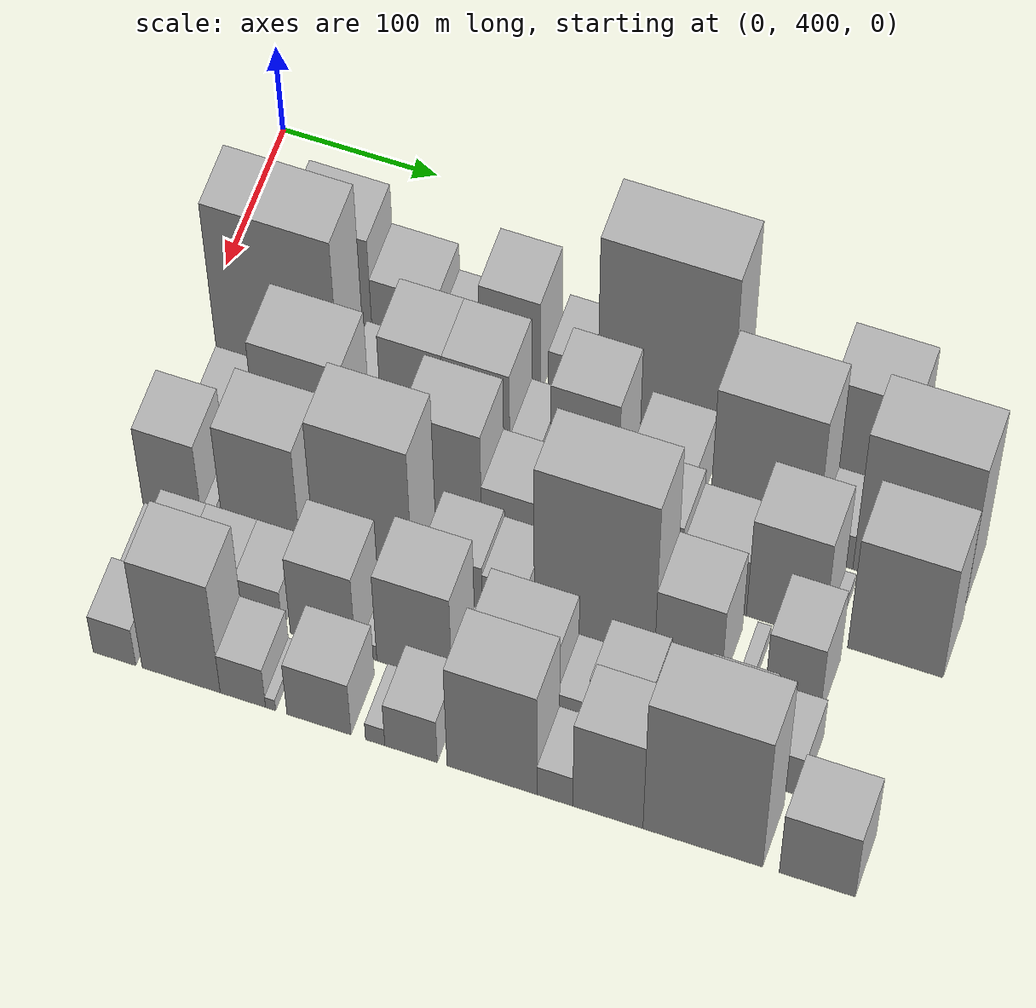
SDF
<sdf version="1.6">
 <world name="default">
  <model name="building_37">
   <static>1</static>
   <pose>100.0000 433.6537 0 0.000000 0.000000 0.000000</pose>
   <link name="link">
    <pose>0 0 36.00 0 0 0</pose>
    <collision name="collision"><geometry><box><size>40.0000 36.5249 72.0000</size></box></geometry></collision>
    <visual name="visual">
     <cast_shadows>0</cast_shadows>
     <geometry><box><size>40.0000 36.5249 72.0000</size></box></geometry>
     <material>
      <script>
       <uri>model://HANNAS_wall/materials/scripts</uri>
       <uri>model://HANNAS_wall/materials/textures</uri>
       <name>vrc/HANNAS_wall</name>
      </script>
     </material>
    </visual>
   </link>
  </model>
  <model name="building_38">
   <static>1</static>
   <pose>100.0000 476.8780 0 0.000000 0.000000 0.000000</pose>
   <link name="link">
    <pose>0 0 64.50 0 0 0</pose>
    <collision name="collision"><geometry><box><size>40.0000 49.9238 129.0000</size></box></geometry></collision>
    <visual name="visual">
     <cast_shadows>0</cast_shadows>
     <geometry><box><size>40.0000 49.9238 129.0000</size></box></geometry>
     <material>
      <script>
       <uri>model://HANNAS_wall/materials/scripts</uri>
       <uri>model://HANNAS_wall/materials/textures</uri>
       <name>vrc/HANNAS_wall</name>
      </script>
     </material>
    </visual>
   </link>
  </model>
  <model name="building_39">
   <static>1</static>
   <pose>100.0000 522.8641 0 0.000000 0.000000 0.000000</pose>
   <link name="link">
    <pose>0 0 40.50 0 0 0</pose>
    <collision name="collision"><geometry><box><size>40.0000 42.0485 81.0000</size></box></geometry></collision>
    <visual name="visual">
     <cast_shadows>0</cast_shadows>
     <geometry><box><size>40.0000 42.0485 81.0000</size></box></geometry>
     <material>
      <script>
       <uri>model://HANNAS_wall/materials/scripts</uri>
       <uri>model://HANNAS_wall/materials/textures</uri>
       <name>vrc/HANNAS_wall</name>
      </script>
     </material>
    </visual>
   </link>
  </model>
  <model name="building_40">
   <static>1</static>
   <pose>100.0000 557.1545 0 0.000000 0.000000 0.000000</pose>
   <link name="link">
    <pose>0 0 24.00 0 0 0</pose>
    <collision name="collision"><geometry><box><size>40.0000 26.5323 48.0000</size></box></geometry></collision>
    <visual name="visual">
     <cast_shadows>0</cast_shadows>
     <geometry><box><size>40.0000 26.5323 48.0000</size></box></geometry>
     <material>
      <script>
       <uri>model://HANNAS_wall/materials/scripts</uri>
       <uri>model://HANNAS_wall/materials/textures</uri>
       <name>vrc/HANNAS_wall</name>
      </script>
     </material>
    </visual>
   </link>
  </model>
  <model name="building_41">
   <static>1</static>
   <pose>100.0000 589.6250 0 0.000000 0.000000 0.000000</pose>
   <link name="link">
    <pose>0 0 58.50 0 0 0</pose>
    <collision name="collision"><geometry><box><size>40.0000 38.4087 117.0000</size></box></geometry></collision>
    <visual name="visual">
     <cast_shadows>0</cast_shadows>
     <geometry><box><size>40.0000 38.4087 117.0000</size></box></geometry>
     <material>
      <script>
       <uri>model://HANNAS_wall/materials/scripts</uri>
       <uri>model://HANNAS_wall/materials/textures</uri>
       <name>vrc/HANNAS_wall</name>
      </script>
     </material>
    </visual>
   </link>
  </model>
  <model name="building_42">
   <static>1</static>
   <pose>100.0000 629.2663 0 0.000000 0.000000 0.000000</pose>
   <link name="link">
    <pose>0 0 30.00 0 0 0</pose>
    <collision name="collision"><geometry><box><size>40.0000 30.8738 60.0000</size></box></geometry></collision>
    <visual name="visual">
     <cast_shadows>0</cast_shadows>
     <geometry><box><size>40.0000 30.8738 60.0000</size></box></geometry>
     <material>
      <script>
       <uri>model://HANNAS_wall/materials/scripts</uri>
       <uri>model://HANNAS_wall/materials/textures</uri>
       <name>vrc/HANNAS_wall</name>
      </script>
     </material>
    </visual>
   </link>
  </model>
  <model name="building_43">
   <static>1</static>
   <pose>100.0000 686.3726 0 0.000000 0.000000 0.000000</pose>
   <link name="link">
    <pose>0 0 111.00 0 0 0</pose>
    <collision name="collision"><geometry><box><size>40.0000 83.3390 222.0000</size></box></geometry></collision>
    <visual name="visual">
     <cast_shadows>0</cast_shadows>
     <geometry><box><size>40.0000 83.3390 222.0000</size></box></geometry>
     <material>
      <script>
       <uri>model://HANNAS_wall/materials/scripts</uri>
       <uri>model://HANNAS_wall/materials/textures</uri>
       <name>vrc/HANNAS_wall</name>
      </script>
     </material>
    </visual>
   </link>
  </model>
  <model name="building_44">
   <static>1</static>
   <pose>100.0000 750.5234 0 0.000000 0.000000 0.000000</pose>
   <link name="link">
    <pose>0 0 37.50 0 0 0</pose>
    <collision name="collision"><geometry><box><size>40.0000 44.9625 75.0000</size></box></geometry></collision>
    <visual name="visual">
     <cast_shadows>0</cast_shadows>
     <geometry><box><size>40.0000 44.9625 75.0000</size></box></geometry>
     <material>
      <script>
       <uri>model://HANNAS_wall/materials/scripts</uri>
       <uri>model://HANNAS_wall/materials/textures</uri>
       <name>vrc/HANNAS_wall</name>
      </script>
     </material>
    </visual>
   </link>
  </model>
  <model name="building_45">
   <static>1</static>
   <pose>100.0000 782.7815 0 0.000000 0.000000 0.000000</pose>
   <link name="link">
    <pose>0 0 10.50 0 0 0</pose>
    <collision name="collision"><geometry><box><size>40.0000 9.5538 21.0000</size></box></geometry></collision>
    <visual name="visual">
     <cast_shadows>0</cast_shadows>
     <geometry><box><size>40.0000 9.5538 21.0000</size></box></geometry>
     <material>
      <script>
       <uri>model://HANNAS_wall/materials/scripts</uri>
       <uri>model://HANNAS_wall/materials/textures</uri>
       <name>vrc/HANNAS_wall</name>
      </script>
     </material>
    </visual>
   </link>
  </model>
  <model name="building_46">
   <static>1</static>
   <pose>100.0000 812.7004 0 0.000000 0.000000 0.000000</pose>
   <link name="link">
    <pose>0 0 67.50 0 0 0</pose>
    <collision name="collision"><geometry><box><size>40.0000 50.2839 135.0000</size></box></geometry></collision>
    <visual name="visual">
     <cast_shadows>0</cast_shadows>
     <geometry><box><size>40.0000 50.2839 135.0000</size></box></geometry>
     <material>
      <script>
       <uri>model://HANNAS_wall/materials/scripts</uri>
       <uri>model://HANNAS_wall/materials/textures</uri>
       <name>vrc/HANNAS_wall</name>
      </script>
     </material>
    </visual>
   </link>
  </model>
  <model name="building_80">
   <static>1</static>
   <pose>149.0000 460.5223 0 0.000000 0.000000 0.000000</pose>
   <link name="link">
    <pose>0 0 106.50 0 0 0</pose>
    <collision name="collision"><geometry><box><size>40.0000 78.3085 213.0000</size></box></geometry></collision>
    <visual name="visual">
     <cast_shadows>0</cast_shadows>
     <geometry><box><size>40.0000 78.3085 213.0000</size></box></geometry>
     <material>
      <script>
       <uri>model://HANNAS_wall/materials/scripts</uri>
       <uri>model://HANNAS_wall/materials/textures</uri>
       <name>vrc/HANNAS_wall</name>
      </script>
     </material>
    </visual>
   </link>
  </model>
  <model name="building_81">
   <static>1</static>
   <pose>149.0000 513.9437 0 0.000000 0.000000 0.000000</pose>
   <link name="link">
    <pose>0 0 22.50 0 0 0</pose>
    <collision name="collision"><geometry><box><size>40.0000 22.5342 45.0000</size></box></geometry></collision>
    <visual name="visual">
     <cast_shadows>0</cast_shadows>
     <geometry><box><size>40.0000 22.5342 45.0000</size></box></geometry>
     <material>
      <script>
       <uri>model://HANNAS_wall/materials/scripts</uri>
       <uri>model://HANNAS_wall/materials/textures</uri>
       <name>vrc/HANNAS_wall</name>
      </script>
     </material>
    </visual>
   </link>
  </model>
  <model name="building_82">
   <static>1</static>
   <pose>149.0000 545.0869 0 0.000000 0.000000 0.000000</pose>
   <link name="link">
    <pose>0 0 57.00 0 0 0</pose>
    <collision name="collision"><geometry><box><size>40.0000 39.7520 114.0000</size></box></geometry></collision>
    <visual name="visual">
     <cast_shadows>0</cast_shadows>
     <geometry><box><size>40.0000 39.7520 114.0000</size></box></geometry>
     <material>
      <script>
       <uri>model://HANNAS_wall/materials/scripts</uri>
       <uri>model://HANNAS_wall/materials/textures</uri>
       <name>vrc/HANNAS_wall</name>
      </script>
     </material>
    </visual>
   </link>
  </model>
  <model name="building_83">
   <static>1</static>
   <pose>149.0000 585.7108 0 0.000000 0.000000 0.000000</pose>
   <link name="link">
    <pose>0 0 57.00 0 0 0</pose>
    <collision name="collision"><geometry><box><size>40.0000 41.4958 114.0000</size></box></geometry></collision>
    <visual name="visual">
     <cast_shadows>0</cast_shadows>
     <geometry><box><size>40.0000 41.4958 114.0000</size></box></geometry>
     <material>
      <script>
       <uri>model://HANNAS_wall/materials/scripts</uri>
       <uri>model://HANNAS_wall/materials/textures</uri>
       <name>vrc/HANNAS_wall</name>
      </script>
     </material>
    </visual>
   </link>
  </model>
  <model name="building_84">
   <static>1</static>
   <pose>149.0000 616.3062 0 0.000000 0.000000 0.000000</pose>
   <link name="link">
    <pose>0 0 18.00 0 0 0</pose>
    <collision name="collision"><geometry><box><size>40.0000 19.6950 36.0000</size></box></geometry></collision>
    <visual name="visual">
     <cast_shadows>0</cast_shadows>
     <geometry><box><size>40.0000 19.6950 36.0000</size></box></geometry>
     <material>
      <script>
       <uri>model://HANNAS_wall/materials/scripts</uri>
       <uri>model://HANNAS_wall/materials/textures</uri>
       <name>vrc/HANNAS_wall</name>
      </script>
     </material>
    </visual>
   </link>
  </model>
  <model name="building_85">
   <static>1</static>
   <pose>149.0000 653.4569 0 0.000000 0.000000 0.000000</pose>
   <link name="link">
    <pose>0 0 60.00 0 0 0</pose>
    <collision name="collision"><geometry><box><size>40.0000 42.6064 120.0000</size></box></geometry></collision>
    <visual name="visual">
     <cast_shadows>0</cast_shadows>
     <geometry><box><size>40.0000 42.6064 120.0000</size></box></geometry>
     <material>
      <script>
       <uri>model://HANNAS_wall/materials/scripts</uri>
       <uri>model://HANNAS_wall/materials/textures</uri>
       <name>vrc/HANNAS_wall</name>
      </script>
     </material>
    </visual>
   </link>
  </model>
  <model name="building_86">
   <static>1</static>
   <pose>149.0000 702.0932 0 0.000000 0.000000 0.000000</pose>
   <link name="link">
    <pose>0 0 34.50 0 0 0</pose>
    <collision name="collision"><geometry><box><size>40.0000 40.6661 69.0000</size></box></geometry></collision>
    <visual name="visual">
     <cast_shadows>0</cast_shadows>
     <geometry><box><size>40.0000 40.6661 69.0000</size></box></geometry>
     <material>
      <script>
       <uri>model://HANNAS_wall/materials/scripts</uri>
       <uri>model://HANNAS_wall/materials/textures</uri>
       <name>vrc/HANNAS_wall</name>
      </script>
     </material>
    </visual>
   </link>
  </model>
  <model name="building_87">
   <static>1</static>
   <pose>149.0000 764.3944 0 0.000000 0.000000 0.000000</pose>
   <link name="link">
    <pose>0 0 90.00 0 0 0</pose>
    <collision name="collision"><geometry><box><size>40.0000 65.9363 180.0000</size></box></geometry></collision>
    <visual name="visual">
     <cast_shadows>0</cast_shadows>
     <geometry><box><size>40.0000 65.9363 180.0000</size></box></geometry>
     <material>
      <script>
       <uri>model://HANNAS_wall/materials/scripts</uri>
       <uri>model://HANNAS_wall/materials/textures</uri>
       <name>vrc/HANNAS_wall</name>
      </script>
     </material>
    </visual>
   </link>
  </model>
  <model name="building_88">
   <static>1</static>
   <pose>149.0000 809.0454 0 0.000000 0.000000 0.000000</pose>
   <link name="link">
    <pose>0 0 22.50 0 0 0</pose>
    <collision name="collision"><geometry><box><size>40.0000 23.3656 45.0000</size></box></geometry></collision>
    <visual name="visual">
     <cast_shadows>0</cast_shadows>
     <geometry><box><size>40.0000 23.3656 45.0000</size></box></geometry>
     <material>
      <script>
       <uri>model://HANNAS_wall/materials/scripts</uri>
       <uri>model://HANNAS_wall/materials/textures</uri>
       <name>vrc/HANNAS_wall</name>
      </script>
     </material>
    </visual>
   </link>
  </model>
  <model name="building_89">
   <static>1</static>
   <pose>149.0000 855.6148 0 0.000000 0.000000 0.000000</pose>
   <link name="link">
    <pose>0 0 91.50 0 0 0</pose>
    <collision name="collision"><geometry><box><size>40.0000 69.7732 183.0000</size></box></geometry></collision>
    <visual name="visual">
     <cast_shadows>0</cast_shadows>
     <geometry><box><size>40.0000 69.7732 183.0000</size></box></geometry>
     <material>
      <script>
       <uri>model://HANNAS_wall/materials/scripts</uri>
       <uri>model://HANNAS_wall/materials/textures</uri>
       <name>vrc/HANNAS_wall</name>
      </script>
     </material>
    </visual>
   </link>
  </model>
  <model name="building_127">
   <static>1</static>
   <pose>198.0000 440.8544 0 0.000000 0.000000 0.000000</pose>
   <link name="link">
    <pose>0 0 27.00 0 0 0</pose>
    <collision name="collision"><geometry><box><size>40.0000 30.1423 54.0000</size></box></geometry></collision>
    <visual name="visual">
     <cast_shadows>0</cast_shadows>
     <geometry><box><size>40.0000 30.1423 54.0000</size></box></geometry>
     <material>
      <script>
       <uri>model://HANNAS_wall/materials/scripts</uri>
       <uri>model://HANNAS_wall/materials/textures</uri>
       <name>vrc/HANNAS_wall</name>
      </script>
     </material>
    </visual>
   </link>
  </model>
  <model name="building_128">
   <static>1</static>
   <pose>198.0000 493.3075 0 0.000000 0.000000 0.000000</pose>
   <link name="link">
    <pose>0 0 79.50 0 0 0</pose>
    <collision name="collision"><geometry><box><size>40.0000 56.7640 159.0000</size></box></geometry></collision>
    <visual name="visual">
     <cast_shadows>0</cast_shadows>
     <geometry><box><size>40.0000 56.7640 159.0000</size></box></geometry>
     <material>
      <script>
       <uri>model://HANNAS_wall/materials/scripts</uri>
       <uri>model://HANNAS_wall/materials/textures</uri>
       <name>vrc/HANNAS_wall</name>
      </script>
     </material>
    </visual>
   </link>
  </model>
  <model name="building_129">
   <static>1</static>
   <pose>198.0000 539.8741 0 0.000000 0.000000 0.000000</pose>
   <link name="link">
    <pose>0 0 16.50 0 0 0</pose>
    <collision name="collision"><geometry><box><size>40.0000 18.3693 33.0000</size></box></geometry></collision>
    <visual name="visual">
     <cast_shadows>0</cast_shadows>
     <geometry><box><size>40.0000 18.3693 33.0000</size></box></geometry>
     <material>
      <script>
       <uri>model://HANNAS_wall/materials/scripts</uri>
       <uri>model://HANNAS_wall/materials/textures</uri>
       <name>vrc/HANNAS_wall</name>
      </script>
     </material>
    </visual>
   </link>
  </model>
  <model name="building_130">
   <static>1</static>
   <pose>198.0000 581.9942 0 0.000000 0.000000 0.000000</pose>
   <link name="link">
    <pose>0 0 64.50 0 0 0</pose>
    <collision name="collision"><geometry><box><size>40.0000 47.8707 129.0000</size></box></geometry></collision>
    <visual name="visual">
     <cast_shadows>0</cast_shadows>
     <geometry><box><size>40.0000 47.8707 129.0000</size></box></geometry>
     <material>
      <script>
       <uri>model://HANNAS_wall/materials/scripts</uri>
       <uri>model://HANNAS_wall/materials/textures</uri>
       <name>vrc/HANNAS_wall</name>
      </script>
     </material>
    </visual>
   </link>
  </model>
  <model name="building_131">
   <static>1</static>
   <pose>198.0000 622.1985 0 0.000000 0.000000 0.000000</pose>
   <link name="link">
    <pose>0 0 31.50 0 0 0</pose>
    <collision name="collision"><geometry><box><size>40.0000 32.5380 63.0000</size></box></geometry></collision>
    <visual name="visual">
     <cast_shadows>0</cast_shadows>
     <geometry><box><size>40.0000 32.5380 63.0000</size></box></geometry>
     <material>
      <script>
       <uri>model://HANNAS_wall/materials/scripts</uri>
       <uri>model://HANNAS_wall/materials/textures</uri>
       <name>vrc/HANNAS_wall</name>
      </script>
     </material>
    </visual>
   </link>
  </model>
  <model name="building_132">
   <static>1</static>
   <pose>198.0000 647.0825 0 0.000000 0.000000 0.000000</pose>
   <link name="link">
    <pose>0 0 16.50 0 0 0</pose>
    <collision name="collision"><geometry><box><size>40.0000 17.2300 33.0000</size></box></geometry></collision>
    <visual name="visual">
     <cast_shadows>0</cast_shadows>
     <geometry><box><size>40.0000 17.2300 33.0000</size></box></geometry>
     <material>
      <script>
       <uri>model://HANNAS_wall/materials/scripts</uri>
       <uri>model://HANNAS_wall/materials/textures</uri>
       <name>vrc/HANNAS_wall</name>
      </script>
     </material>
    </visual>
   </link>
  </model>
  <model name="building_133">
   <static>1</static>
   <pose>198.0000 675.9786 0 0.000000 0.000000 0.000000</pose>
   <link name="link">
    <pose>0 0 34.50 0 0 0</pose>
    <collision name="collision"><geometry><box><size>40.0000 40.5622 69.0000</size></box></geometry></collision>
    <visual name="visual">
     <cast_shadows>0</cast_shadows>
     <geometry><box><size>40.0000 40.5622 69.0000</size></box></geometry>
     <material>
      <script>
       <uri>model://HANNAS_wall/materials/scripts</uri>
       <uri>model://HANNAS_wall/materials/textures</uri>
       <name>vrc/HANNAS_wall</name>
      </script>
     </material>
    </visual>
   </link>
  </model>
  <model name="building_134">
   <static>1</static>
   <pose>198.0000 713.1552 0 0.000000 0.000000 0.000000</pose>
   <link name="link">
    <pose>0 0 46.50 0 0 0</pose>
    <collision name="collision"><geometry><box><size>40.0000 33.7910 93.0000</size></box></geometry></collision>
    <visual name="visual">
     <cast_shadows>0</cast_shadows>
     <geometry><box><size>40.0000 33.7910 93.0000</size></box></geometry>
     <material>
      <script>
       <uri>model://HANNAS_wall/materials/scripts</uri>
       <uri>model://HANNAS_wall/materials/textures</uri>
       <name>vrc/HANNAS_wall</name>
      </script>
     </material>
    </visual>
   </link>
  </model>
  <model name="building_135">
   <static>1</static>
   <pose>198.0000 750.3197 0 0.000000 0.000000 0.000000</pose>
   <link name="link">
    <pose>0 0 37.50 0 0 0</pose>
    <collision name="collision"><geometry><box><size>40.0000 40.5381 75.0000</size></box></geometry></collision>
    <visual name="visual">
     <cast_shadows>0</cast_shadows>
     <geometry><box><size>40.0000 40.5381 75.0000</size></box></geometry>
     <material>
      <script>
       <uri>model://HANNAS_wall/materials/scripts</uri>
       <uri>model://HANNAS_wall/materials/textures</uri>
       <name>vrc/HANNAS_wall</name>
      </script>
     </material>
    </visual>
   </link>
  </model>
  <model name="building_136">
   <static>1</static>
   <pose>198.0000 794.4703 0 0.000000 0.000000 0.000000</pose>
   <link name="link">
    <pose>0 0 66.00 0 0 0</pose>
    <collision name="collision"><geometry><box><size>40.0000 47.7632 132.0000</size></box></geometry></collision>
    <visual name="visual">
     <cast_shadows>0</cast_shadows>
     <geometry><box><size>40.0000 47.7632 132.0000</size></box></geometry>
     <material>
      <script>
       <uri>model://HANNAS_wall/materials/scripts</uri>
       <uri>model://HANNAS_wall/materials/textures</uri>
       <name>vrc/HANNAS_wall</name>
      </script>
     </material>
    </visual>
   </link>
  </model>
  <model name="building_137">
   <static>1</static>
   <pose>198.0000 821.7309 0 0.000000 0.000000 0.000000</pose>
   <link name="link">
    <pose>0 0 7.50 0 0 0</pose>
    <collision name="collision"><geometry><box><size>40.0000 6.7580 15.0000</size></box></geometry></collision>
    <visual name="visual">
     <cast_shadows>0</cast_shadows>
     <geometry><box><size>40.0000 6.7580 15.0000</size></box></geometry>
     <material>
      <script>
       <uri>model://HANNAS_wall/materials/scripts</uri>
       <uri>model://HANNAS_wall/materials/textures</uri>
       <name>vrc/HANNAS_wall</name>
      </script>
     </material>
    </visual>
   </link>
  </model>
  <model name="building_138">
   <static>1</static>
   <pose>198.0000 862.3752 0 0.000000 0.000000 0.000000</pose>
   <link name="link">
    <pose>0 0 75.00 0 0 0</pose>
    <collision name="collision"><geometry><box><size>40.0000 58.5306 150.0000</size></box></geometry></collision>
    <visual name="visual">
     <cast_shadows>0</cast_shadows>
     <geometry><box><size>40.0000 58.5306 150.0000</size></box></geometry>
     <material>
      <script>
       <uri>model://HANNAS_wall/materials/scripts</uri>
       <uri>model://HANNAS_wall/materials/textures</uri>
       <name>vrc/HANNAS_wall</name>
      </script>
     </material>
    </visual>
   </link>
  </model>
  <model name="building_173">
   <static>1</static>
   <pose>247.0000 428.8303 0 0.000000 0.000000 0.000000</pose>
   <link name="link">
    <pose>0 0 52.50 0 0 0</pose>
    <collision name="collision"><geometry><box><size>40.0000 37.4680 105.0000</size></box></geometry></collision>
    <visual name="visual">
     <cast_shadows>0</cast_shadows>
     <geometry><box><size>40.0000 37.4680 105.0000</size></box></geometry>
     <material>
      <script>
       <uri>model://HANNAS_wall/materials/scripts</uri>
       <uri>model://HANNAS_wall/materials/textures</uri>
       <name>vrc/HANNAS_wall</name>
      </script>
     </material>
    </visual>
   </link>
  </model>
  <model name="building_174">
   <static>1</static>
   <pose>247.0000 451.2593 0 0.000000 0.000000 0.000000</pose>
   <link name="link">
    <pose>0 0 9.00 0 0 0</pose>
    <collision name="collision"><geometry><box><size>40.0000 7.3901 18.0000</size></box></geometry></collision>
    <visual name="visual">
     <cast_shadows>0</cast_shadows>
     <geometry><box><size>40.0000 7.3901 18.0000</size></box></geometry>
     <material>
      <script>
       <uri>model://HANNAS_wall/materials/scripts</uri>
       <uri>model://HANNAS_wall/materials/textures</uri>
       <name>vrc/HANNAS_wall</name>
      </script>
     </material>
    </visual>
   </link>
  </model>
  <model name="building_175">
   <static>1</static>
   <pose>247.0000 485.3321 0 0.000000 0.000000 0.000000</pose>
   <link name="link">
    <pose>0 0 70.50 0 0 0</pose>
    <collision name="collision"><geometry><box><size>40.0000 48.7555 141.0000</size></box></geometry></collision>
    <visual name="visual">
     <cast_shadows>0</cast_shadows>
     <geometry><box><size>40.0000 48.7555 141.0000</size></box></geometry>
     <material>
      <script>
       <uri>model://HANNAS_wall/materials/scripts</uri>
       <uri>model://HANNAS_wall/materials/textures</uri>
       <name>vrc/HANNAS_wall</name>
      </script>
     </material>
    </visual>
   </link>
  </model>
  <model name="building_176">
   <static>1</static>
   <pose>247.0000 514.2721 0 0.000000 0.000000 0.000000</pose>
   <link name="link">
    <pose>0 0 10.50 0 0 0</pose>
    <collision name="collision"><geometry><box><size>40.0000 9.1246 21.0000</size></box></geometry></collision>
    <visual name="visual">
     <cast_shadows>0</cast_shadows>
     <geometry><box><size>40.0000 9.1246 21.0000</size></box></geometry>
     <material>
      <script>
       <uri>model://HANNAS_wall/materials/scripts</uri>
       <uri>model://HANNAS_wall/materials/textures</uri>
       <name>vrc/HANNAS_wall</name>
      </script>
     </material>
    </visual>
   </link>
  </model>
  <model name="building_177">
   <static>1</static>
   <pose>247.0000 549.5172 0 0.000000 0.000000 0.000000</pose>
   <link name="link">
    <pose>0 0 93.00 0 0 0</pose>
    <collision name="collision"><geometry><box><size>40.0000 61.3656 186.0000</size></box></geometry></collision>
    <visual name="visual">
     <cast_shadows>0</cast_shadows>
     <geometry><box><size>40.0000 61.3656 186.0000</size></box></geometry>
     <material>
      <script>
       <uri>model://HANNAS_wall/materials/scripts</uri>
       <uri>model://HANNAS_wall/materials/textures</uri>
       <name>vrc/HANNAS_wall</name>
      </script>
     </material>
    </visual>
   </link>
  </model>
  <model name="building_178">
   <static>1</static>
   <pose>247.0000 604.8624 0 0.000000 0.000000 0.000000</pose>
   <link name="link">
    <pose>0 0 31.50 0 0 0</pose>
    <collision name="collision"><geometry><box><size>40.0000 37.3248 63.0000</size></box></geometry></collision>
    <visual name="visual">
     <cast_shadows>0</cast_shadows>
     <geometry><box><size>40.0000 37.3248 63.0000</size></box></geometry>
     <material>
      <script>
       <uri>model://HANNAS_wall/materials/scripts</uri>
       <uri>model://HANNAS_wall/materials/textures</uri>
       <name>vrc/HANNAS_wall</name>
      </script>
     </material>
    </visual>
   </link>
  </model>
  <model name="building_179">
   <static>1</static>
   <pose>247.0000 637.1333 0 0.000000 0.000000 0.000000</pose>
   <link name="link">
    <pose>0 0 27.00 0 0 0</pose>
    <collision name="collision"><geometry><box><size>40.0000 27.2170 54.0000</size></box></geometry></collision>
    <visual name="visual">
     <cast_shadows>0</cast_shadows>
     <geometry><box><size>40.0000 27.2170 54.0000</size></box></geometry>
     <material>
      <script>
       <uri>model://HANNAS_wall/materials/scripts</uri>
       <uri>model://HANNAS_wall/materials/textures</uri>
       <name>vrc/HANNAS_wall</name>
      </script>
     </material>
    </visual>
   </link>
  </model>
  <model name="building_180">
   <static>1</static>
   <pose>247.0000 692.8177 0 0.000000 0.000000 0.000000</pose>
   <link name="link">
    <pose>0 0 109.50 0 0 0</pose>
    <collision name="collision"><geometry><box><size>40.0000 74.1517 219.0000</size></box></geometry></collision>
    <visual name="visual">
     <cast_shadows>0</cast_shadows>
     <geometry><box><size>40.0000 74.1517 219.0000</size></box></geometry>
     <material>
      <script>
       <uri>model://HANNAS_wall/materials/scripts</uri>
       <uri>model://HANNAS_wall/materials/textures</uri>
       <name>vrc/HANNAS_wall</name>
      </script>
     </material>
    </visual>
   </link>
  </model>
  <model name="building_181">
   <static>1</static>
   <pose>247.0000 750.5617 0 0.000000 0.000000 0.000000</pose>
   <link name="link">
    <pose>0 0 54.00 0 0 0</pose>
    <collision name="collision"><geometry><box><size>40.0000 41.3363 108.0000</size></box></geometry></collision>
    <visual name="visual">
     <cast_shadows>0</cast_shadows>
     <geometry><box><size>40.0000 41.3363 108.0000</size></box></geometry>
     <material>
      <script>
       <uri>model://HANNAS_wall/materials/scripts</uri>
       <uri>model://HANNAS_wall/materials/textures</uri>
       <name>vrc/HANNAS_wall</name>
      </script>
     </material>
    </visual>
   </link>
  </model>
  <model name="building_182">
   <static>1</static>
   <pose>247.0000 784.4502 0 0.000000 0.000000 0.000000</pose>
   <link name="link">
    <pose>0 0 9.00 0 0 0</pose>
    <collision name="collision"><geometry><box><size>40.0000 8.4407 18.0000</size></box></geometry></collision>
    <visual name="visual">
     <cast_shadows>0</cast_shadows>
     <geometry><box><size>40.0000 8.4407 18.0000</size></box></geometry>
     <material>
      <script>
       <uri>model://HANNAS_wall/materials/scripts</uri>
       <uri>model://HANNAS_wall/materials/textures</uri>
       <name>vrc/HANNAS_wall</name>
      </script>
     </material>
    </visual>
   </link>
  </model>
  <model name="building_183">
   <static>1</static>
   <pose>247.0000 814.6042 0 0.000000 0.000000 0.000000</pose>
   <link name="link">
    <pose>0 0 49.50 0 0 0</pose>
    <collision name="collision"><geometry><box><size>40.0000 33.8674 99.0000</size></box></geometry></collision>
    <visual name="visual">
     <cast_shadows>0</cast_shadows>
     <geometry><box><size>40.0000 33.8674 99.0000</size></box></geometry>
     <material>
      <script>
       <uri>model://HANNAS_wall/materials/scripts</uri>
       <uri>model://HANNAS_wall/materials/textures</uri>
       <name>vrc/HANNAS_wall</name>
      </script>
     </material>
    </visual>
   </link>
  </model>
  <model name="building_223">
   <static>1</static>
   <pose>296.0000 422.2382 0 0.000000 0.000000 0.000000</pose>
   <link name="link">
    <pose>0 0 13.50 0 0 0</pose>
    <collision name="collision"><geometry><box><size>40.0000 11.9999 27.0000</size></box></geometry></collision>
    <visual name="visual">
     <cast_shadows>0</cast_shadows>
     <geometry><box><size>40.0000 11.9999 27.0000</size></box></geometry>
     <material>
      <script>
       <uri>model://HANNAS_wall/materials/scripts</uri>
       <uri>model://HANNAS_wall/materials/textures</uri>
       <name>vrc/HANNAS_wall</name>
      </script>
     </material>
    </visual>
   </link>
  </model>
  <model name="building_224">
   <static>1</static>
   <pose>296.0000 442.4262 0 0.000000 0.000000 0.000000</pose>
   <link name="link">
    <pose>0 0 27.00 0 0 0</pose>
    <collision name="collision"><geometry><box><size>40.0000 28.3762 54.0000</size></box></geometry></collision>
    <visual name="visual">
     <cast_shadows>0</cast_shadows>
     <geometry><box><size>40.0000 28.3762 54.0000</size></box></geometry>
     <material>
      <script>
       <uri>model://HANNAS_wall/materials/scripts</uri>
       <uri>model://HANNAS_wall/materials/textures</uri>
       <name>vrc/HANNAS_wall</name>
      </script>
     </material>
    </visual>
   </link>
  </model>
  <model name="building_225">
   <static>1</static>
   <pose>296.0000 472.3888 0 0.000000 0.000000 0.000000</pose>
   <link name="link">
    <pose>0 0 27.00 0 0 0</pose>
    <collision name="collision"><geometry><box><size>40.0000 31.5490 54.0000</size></box></geometry></collision>
    <visual name="visual">
     <cast_shadows>0</cast_shadows>
     <geometry><box><size>40.0000 31.5490 54.0000</size></box></geometry>
     <material>
      <script>
       <uri>model://HANNAS_wall/materials/scripts</uri>
       <uri>model://HANNAS_wall/materials/textures</uri>
       <name>vrc/HANNAS_wall</name>
      </script>
     </material>
    </visual>
   </link>
  </model>
  <model name="building_226">
   <static>1</static>
   <pose>296.0000 502.1955 0 0.000000 0.000000 0.000000</pose>
   <link name="link">
    <pose>0 0 27.00 0 0 0</pose>
    <collision name="collision"><geometry><box><size>40.0000 28.0642 54.0000</size></box></geometry></collision>
    <visual name="visual">
     <cast_shadows>0</cast_shadows>
     <geometry><box><size>40.0000 28.0642 54.0000</size></box></geometry>
     <material>
      <script>
       <uri>model://HANNAS_wall/materials/scripts</uri>
       <uri>model://HANNAS_wall/materials/textures</uri>
       <name>vrc/HANNAS_wall</name>
      </script>
     </material>
    </visual>
   </link>
  </model>
  <model name="building_227">
   <static>1</static>
   <pose>296.0000 541.6198 0 0.000000 0.000000 0.000000</pose>
   <link name="link">
    <pose>0 0 52.50 0 0 0</pose>
    <collision name="collision"><geometry><box><size>40.0000 40.7844 105.0000</size></box></geometry></collision>
    <visual name="visual">
     <cast_shadows>0</cast_shadows>
     <geometry><box><size>40.0000 40.7844 105.0000</size></box></geometry>
     <material>
      <script>
       <uri>model://HANNAS_wall/materials/scripts</uri>
       <uri>model://HANNAS_wall/materials/textures</uri>
       <name>vrc/HANNAS_wall</name>
      </script>
     </material>
    </visual>
   </link>
  </model>
  <model name="building_228">
   <static>1</static>
   <pose>296.0000 570.5937 0 0.000000 0.000000 0.000000</pose>
   <link name="link">
    <pose>0 0 10.50 0 0 0</pose>
    <collision name="collision"><geometry><box><size>40.0000 9.1634 21.0000</size></box></geometry></collision>
    <visual name="visual">
     <cast_shadows>0</cast_shadows>
     <geometry><box><size>40.0000 9.1634 21.0000</size></box></geometry>
     <material>
      <script>
       <uri>model://HANNAS_wall/materials/scripts</uri>
       <uri>model://HANNAS_wall/materials/textures</uri>
       <name>vrc/HANNAS_wall</name>
      </script>
     </material>
    </visual>
   </link>
  </model>
  <model name="building_229">
   <static>1</static>
   <pose>296.0000 598.4836 0 0.000000 0.000000 0.000000</pose>
   <link name="link">
    <pose>0 0 60.00 0 0 0</pose>
    <collision name="collision"><geometry><box><size>40.0000 46.6164 120.0000</size></box></geometry></collision>
    <visual name="visual">
     <cast_shadows>0</cast_shadows>
     <geometry><box><size>40.0000 46.6164 120.0000</size></box></geometry>
     <material>
      <script>
       <uri>model://HANNAS_wall/materials/scripts</uri>
       <uri>model://HANNAS_wall/materials/textures</uri>
       <name>vrc/HANNAS_wall</name>
      </script>
     </material>
    </visual>
   </link>
  </model>
  <model name="building_230">
   <static>1</static>
   <pose>296.0000 627.3193 0 0.000000 0.000000 0.000000</pose>
   <link name="link">
    <pose>0 0 13.50 0 0 0</pose>
    <collision name="collision"><geometry><box><size>40.0000 11.0549 27.0000</size></box></geometry></collision>
    <visual name="visual">
     <cast_shadows>0</cast_shadows>
     <geometry><box><size>40.0000 11.0549 27.0000</size></box></geometry>
     <material>
      <script>
       <uri>model://HANNAS_wall/materials/scripts</uri>
       <uri>model://HANNAS_wall/materials/textures</uri>
       <name>vrc/HANNAS_wall</name>
      </script>
     </material>
    </visual>
   </link>
  </model>
  <model name="building_231">
   <static>1</static>
   <pose>296.0000 659.5951 0 0.000000 0.000000 0.000000</pose>
   <link name="link">
    <pose>0 0 45.00 0 0 0</pose>
    <collision name="collision"><geometry><box><size>40.0000 53.4966 90.0000</size></box></geometry></collision>
    <visual name="visual">
     <cast_shadows>0</cast_shadows>
     <geometry><box><size>40.0000 53.4966 90.0000</size></box></geometry>
     <material>
      <script>
       <uri>model://HANNAS_wall/materials/scripts</uri>
       <uri>model://HANNAS_wall/materials/textures</uri>
       <name>vrc/HANNAS_wall</name>
      </script>
     </material>
    </visual>
   </link>
  </model>
  <model name="building_232">
   <static>1</static>
   <pose>296.0000 696.2783 0 0.000000 0.000000 0.000000</pose>
   <link name="link">
    <pose>0 0 18.00 0 0 0</pose>
    <collision name="collision"><geometry><box><size>40.0000 19.8698 36.0000</size></box></geometry></collision>
    <visual name="visual">
     <cast_shadows>0</cast_shadows>
     <geometry><box><size>40.0000 19.8698 36.0000</size></box></geometry>
     <material>
      <script>
       <uri>model://HANNAS_wall/materials/scripts</uri>
       <uri>model://HANNAS_wall/materials/textures</uri>
       <name>vrc/HANNAS_wall</name>
      </script>
     </material>
    </visual>
   </link>
  </model>
  <model name="building_233">
   <static>1</static>
   <pose>296.0000 724.4219 0 0.000000 0.000000 0.000000</pose>
   <link name="link">
    <pose>0 0 36.00 0 0 0</pose>
    <collision name="collision"><geometry><box><size>40.0000 36.4174 72.0000</size></box></geometry></collision>
    <visual name="visual">
     <cast_shadows>0</cast_shadows>
     <geometry><box><size>40.0000 36.4174 72.0000</size></box></geometry>
     <material>
      <script>
       <uri>model://HANNAS_wall/materials/scripts</uri>
       <uri>model://HANNAS_wall/materials/textures</uri>
       <name>vrc/HANNAS_wall</name>
      </script>
     </material>
    </visual>
   </link>
  </model>
  <model name="building_234">
   <static>1</static>
   <pose>296.0000 745.6658 0 0.000000 0.000000 0.000000</pose>
   <link name="link">
    <pose>0 0 7.50 0 0 0</pose>
    <collision name="collision"><geometry><box><size>40.0000 6.0705 15.0000</size></box></geometry></collision>
    <visual name="visual">
     <cast_shadows>0</cast_shadows>
     <geometry><box><size>40.0000 6.0705 15.0000</size></box></geometry>
     <material>
      <script>
       <uri>model://HANNAS_wall/materials/scripts</uri>
       <uri>model://HANNAS_wall/materials/textures</uri>
       <name>vrc/HANNAS_wall</name>
      </script>
     </material>
    </visual>
   </link>
  </model>
  <model name="building_235">
   <static>1</static>
   <pose>296.0000 756.2984 0 0.000000 0.000000 0.000000</pose>
   <link name="link">
    <pose>0 0 15.00 0 0 0</pose>
    <collision name="collision"><geometry><box><size>40.0000 15.1946 30.0000</size></box></geometry></collision>
    <visual name="visual">
     <cast_shadows>0</cast_shadows>
     <geometry><box><size>40.0000 15.1946 30.0000</size></box></geometry>
     <material>
      <script>
       <uri>model://HANNAS_wall/materials/scripts</uri>
       <uri>model://HANNAS_wall/materials/textures</uri>
       <name>vrc/HANNAS_wall</name>
      </script>
     </material>
    </visual>
   </link>
  </model>
  <model name="building_236">
   <static>1</static>
   <pose>296.0000 787.6952 0 0.000000 0.000000 0.000000</pose>
   <link name="link">
    <pose>0 0 34.50 0 0 0</pose>
    <collision name="collision"><geometry><box><size>40.0000 39.5990 69.0000</size></box></geometry></collision>
    <visual name="visual">
     <cast_shadows>0</cast_shadows>
     <geometry><box><size>40.0000 39.5990 69.0000</size></box></geometry>
     <material>
      <script>
       <uri>model://HANNAS_wall/materials/scripts</uri>
       <uri>model://HANNAS_wall/materials/textures</uri>
       <name>vrc/HANNAS_wall</name>
      </script>
     </material>
    </visual>
   </link>
  </model>
  <model name="building_237">
   <static>1</static>
   <pose>296.0000 822.2394 0 0.000000 0.000000 0.000000</pose>
   <link name="link">
    <pose>0 0 27.00 0 0 0</pose>
    <collision name="collision"><geometry><box><size>40.0000 29.4893 54.0000</size></box></geometry></collision>
    <visual name="visual">
     <cast_shadows>0</cast_shadows>
     <geometry><box><size>40.0000 29.4893 54.0000</size></box></geometry>
     <material>
      <script>
       <uri>model://HANNAS_wall/materials/scripts</uri>
       <uri>model://HANNAS_wall/materials/textures</uri>
       <name>vrc/HANNAS_wall</name>
      </script>
     </material>
    </visual>
   </link>
  </model>
  <model name="building_269">
   <static>1</static>
   <pose>345.0000 429.5364 0 0.000000 0.000000 0.000000</pose>
   <link name="link">
    <pose>0 0 25.50 0 0 0</pose>
    <collision name="collision"><geometry><box><size>40.0000 26.7122 51.0000</size></box></geometry></collision>
    <visual name="visual">
     <cast_shadows>0</cast_shadows>
     <geometry><box><size>40.0000 26.7122 51.0000</size></box></geometry>
     <material>
      <script>
       <uri>model://HANNAS_wall/materials/scripts</uri>
       <uri>model://HANNAS_wall/materials/textures</uri>
       <name>vrc/HANNAS_wall</name>
      </script>
     </material>
    </visual>
   </link>
  </model>
  <model name="building_270">
   <static>1</static>
   <pose>345.0000 471.2607 0 0.000000 0.000000 0.000000</pose>
   <link name="link">
    <pose>0 0 75.00 0 0 0</pose>
    <collision name="collision"><geometry><box><size>40.0000 48.7362 150.0000</size></box></geometry></collision>
    <visual name="visual">
     <cast_shadows>0</cast_shadows>
     <geometry><box><size>40.0000 48.7362 150.0000</size></box></geometry>
     <material>
      <script>
       <uri>model://HANNAS_wall/materials/scripts</uri>
       <uri>model://HANNAS_wall/materials/textures</uri>
       <name>vrc/HANNAS_wall</name>
      </script>
     </material>
    </visual>
   </link>
  </model>
  <model name="building_271">
   <static>1</static>
   <pose>345.0000 509.7310 0 0.000000 0.000000 0.000000</pose>
   <link name="link">
    <pose>0 0 27.00 0 0 0</pose>
    <collision name="collision"><geometry><box><size>40.0000 28.2044 54.0000</size></box></geometry></collision>
    <visual name="visual">
     <cast_shadows>0</cast_shadows>
     <geometry><box><size>40.0000 28.2044 54.0000</size></box></geometry>
     <material>
      <script>
       <uri>model://HANNAS_wall/materials/scripts</uri>
       <uri>model://HANNAS_wall/materials/textures</uri>
       <name>vrc/HANNAS_wall</name>
      </script>
     </material>
    </visual>
   </link>
  </model>
  <model name="building_272">
   <static>1</static>
   <pose>345.0000 526.9818 0 0.000000 0.000000 0.000000</pose>
   <link name="link">
    <pose>0 0 7.50 0 0 0</pose>
    <collision name="collision"><geometry><box><size>40.0000 6.2972 15.0000</size></box></geometry></collision>
    <visual name="visual">
     <cast_shadows>0</cast_shadows>
     <geometry><box><size>40.0000 6.2972 15.0000</size></box></geometry>
     <material>
      <script>
       <uri>model://HANNAS_wall/materials/scripts</uri>
       <uri>model://HANNAS_wall/materials/textures</uri>
       <name>vrc/HANNAS_wall</name>
      </script>
     </material>
    </visual>
   </link>
  </model>
  <model name="building_273">
   <static>1</static>
   <pose>345.0000 556.9791 0 0.000000 0.000000 0.000000</pose>
   <link name="link">
    <pose>0 0 36.00 0 0 0</pose>
    <collision name="collision"><geometry><box><size>40.0000 39.6973 72.0000</size></box></geometry></collision>
    <visual name="visual">
     <cast_shadows>0</cast_shadows>
     <geometry><box><size>40.0000 39.6973 72.0000</size></box></geometry>
     <material>
      <script>
       <uri>model://HANNAS_wall/materials/scripts</uri>
       <uri>model://HANNAS_wall/materials/textures</uri>
       <name>vrc/HANNAS_wall</name>
      </script>
     </material>
    </visual>
   </link>
  </model>
  <model name="building_274">
   <static>1</static>
   <pose>345.0000 591.7866 0 0.000000 0.000000 0.000000</pose>
   <link name="link">
    <pose>0 0 12.00 0 0 0</pose>
    <collision name="collision"><geometry><box><size>40.0000 11.9178 24.0000</size></box></geometry></collision>
    <visual name="visual">
     <cast_shadows>0</cast_shadows>
     <geometry><box><size>40.0000 11.9178 24.0000</size></box></geometry>
     <material>
      <script>
       <uri>model://HANNAS_wall/materials/scripts</uri>
       <uri>model://HANNAS_wall/materials/textures</uri>
       <name>vrc/HANNAS_wall</name>
      </script>
     </material>
    </visual>
   </link>
  </model>
  <model name="building_275">
   <static>1</static>
   <pose>345.0000 613.9262 0 0.000000 0.000000 0.000000</pose>
   <link name="link">
    <pose>0 0 30.00 0 0 0</pose>
    <collision name="collision"><geometry><box><size>40.0000 32.3615 60.0000</size></box></geometry></collision>
    <visual name="visual">
     <cast_shadows>0</cast_shadows>
     <geometry><box><size>40.0000 32.3615 60.0000</size></box></geometry>
     <material>
      <script>
       <uri>model://HANNAS_wall/materials/scripts</uri>
       <uri>model://HANNAS_wall/materials/textures</uri>
       <name>vrc/HANNAS_wall</name>
      </script>
     </material>
    </visual>
   </link>
  </model>
  <model name="building_276">
   <static>1</static>
   <pose>345.0000 663.6735 0 0.000000 0.000000 0.000000</pose>
   <link name="link">
    <pose>0 0 70.50 0 0 0</pose>
    <collision name="collision"><geometry><box><size>40.0000 55.1330 141.0000</size></box></geometry></collision>
    <visual name="visual">
     <cast_shadows>0</cast_shadows>
     <geometry><box><size>40.0000 55.1330 141.0000</size></box></geometry>
     <material>
      <script>
       <uri>model://HANNAS_wall/materials/scripts</uri>
       <uri>model://HANNAS_wall/materials/textures</uri>
       <name>vrc/HANNAS_wall</name>
      </script>
     </material>
    </visual>
   </link>
  </model>
  <model name="building_277">
   <static>1</static>
   <pose>345.0000 702.2095 0 0.000000 0.000000 0.000000</pose>
   <link name="link">
    <pose>0 0 21.00 0 0 0</pose>
    <collision name="collision"><geometry><box><size>40.0000 21.9390 42.0000</size></box></geometry></collision>
    <visual name="visual">
     <cast_shadows>0</cast_shadows>
     <geometry><box><size>40.0000 21.9390 42.0000</size></box></geometry>
     <material>
      <script>
       <uri>model://HANNAS_wall/materials/scripts</uri>
       <uri>model://HANNAS_wall/materials/textures</uri>
       <name>vrc/HANNAS_wall</name>
      </script>
     </material>
    </visual>
   </link>
  </model>
  <model name="building_278">
   <static>1</static>
   <pose>345.0000 734.5598 0 0.000000 0.000000 0.000000</pose>
   <link name="link">
    <pose>0 0 60.00 0 0 0</pose>
    <collision name="collision"><geometry><box><size>40.0000 42.7616 120.0000</size></box></geometry></collision>
    <visual name="visual">
     <cast_shadows>0</cast_shadows>
     <geometry><box><size>40.0000 42.7616 120.0000</size></box></geometry>
     <material>
      <script>
       <uri>model://HANNAS_wall/materials/scripts</uri>
       <uri>model://HANNAS_wall/materials/textures</uri>
       <name>vrc/HANNAS_wall</name>
      </script>
     </material>
    </visual>
   </link>
  </model>
  <model name="building_279">
   <static>1</static>
   <pose>345.0000 792.2589 0 0.000000 0.000000 0.000000</pose>
   <link name="link">
    <pose>0 0 91.50 0 0 0</pose>
    <collision name="collision"><geometry><box><size>40.0000 72.6368 183.0000</size></box></geometry></collision>
    <visual name="visual">
     <cast_shadows>0</cast_shadows>
     <geometry><box><size>40.0000 72.6368 183.0000</size></box></geometry>
     <material>
      <script>
       <uri>model://HANNAS_wall/materials/scripts</uri>
       <uri>model://HANNAS_wall/materials/textures</uri>
       <name>vrc/HANNAS_wall</name>
      </script>
     </material>
    </visual>
   </link>
  </model>
  <model name="building_280">
   <static>1</static>
   <pose>345.0000 861.4933 0 0.000000 0.000000 0.000000</pose>
   <link name="link">
    <pose>0 0 43.50 0 0 0</pose>
    <collision name="collision"><geometry><box><size>40.0000 45.8318 87.0000</size></box></geometry></collision>
    <visual name="visual">
     <cast_shadows>0</cast_shadows>
     <geometry><box><size>40.0000 45.8318 87.0000</size></box></geometry>
     <material>
      <script>
       <uri>model://HANNAS_wall/materials/scripts</uri>
       <uri>model://HANNAS_wall/materials/textures</uri>
       <name>vrc/HANNAS_wall</name>
      </script>
     </material>
    </visual>
   </link>
  </model>
 </world>
</sdf>
